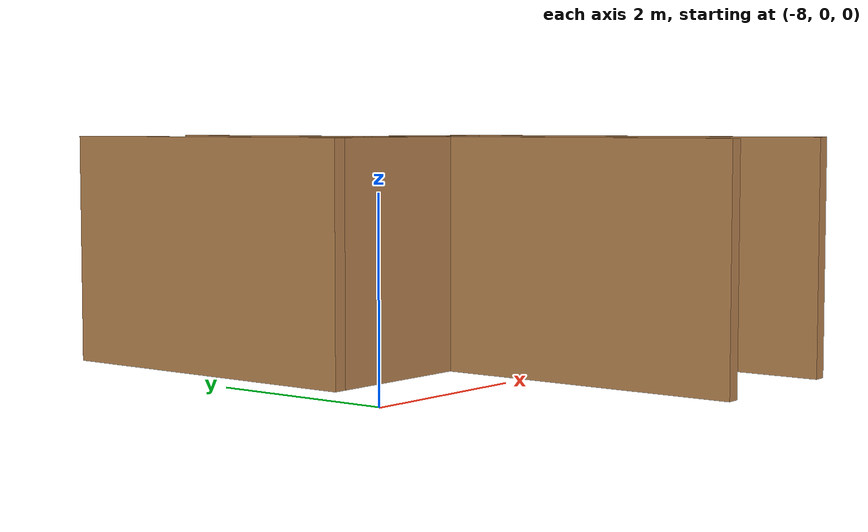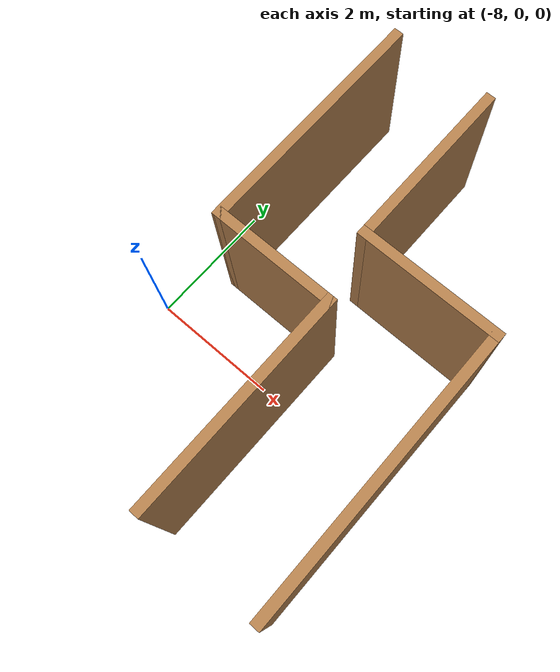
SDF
<?xml version='1.0'?>
<sdf version='1.6'>
  <model name='model_corridor_2'>
    <pose frame=''>-5.61543 1.1544 0 0 -0 0</pose>
    <link name='Wall_1'>
      <collision name='Wall_1_Collision'>
        <geometry>
          <box>
            <size>3.75 0.15 2.5</size>
          </box>
        </geometry>
        <pose frame=''>0 0 1.25 0 -0 0</pose>
      </collision>
      <visual name='Wall_1_Visual'>
        <pose frame=''>0 0 1.25 0 -0 0</pose>
        <geometry>
          <box>
            <size>3.75 0.15 2.5</size>
          </box>
        </geometry>
        <material>
          <script>
            <uri>file://media/materials/scripts/gazebo.material</uri>
            <name>Gazebo/Wood</name>
          </script>
          <ambient>1 1 1 1</ambient>
        </material>
        <meta>
          <layer>0</layer>
        </meta>
      </visual>
      <pose frame=''>-1.85 1.675 0 0 -0 -1.5708</pose>
    </link>
    <link name='Wall_2'>
      <collision name='Wall_2_Collision'>
        <geometry>
          <box>
            <size>2 0.15 2.5</size>
          </box>
        </geometry>
        <pose frame=''>0 0 1.25 0 -0 0</pose>
      </collision>
      <visual name='Wall_2_Visual'>
        <pose frame=''>0 0 1.25 0 -0 0</pose>
        <geometry>
          <box>
            <size>2 0.15 2.5</size>
          </box>
        </geometry>
        <material>
          <script>
            <uri>file://media/materials/scripts/gazebo.material</uri>
            <name>Gazebo/Wood</name>
          </script>
          <ambient>1 1 1 1</ambient>
        </material>
        <meta>
          <layer>0</layer>
        </meta>
      </visual>
      <pose frame=''>-0.925 -0.125 0 0 -0 0</pose>
    </link>
    <link name='Wall_3'>
      <collision name='Wall_3_Collision'>
        <geometry>
          <box>
            <size>3.5 0.15 2.5</size>
          </box>
        </geometry>
        <pose frame=''>0 0 1.25 0 -0 0</pose>
      </collision>
      <visual name='Wall_3_Visual'>
        <pose frame=''>0 0 1.25 0 -0 0</pose>
        <geometry>
          <box>
            <size>3.5 0.15 2.5</size>
          </box>
        </geometry>
        <material>
          <script>
            <uri>file://media/materials/scripts/gazebo.material</uri>
            <name>Gazebo/Wood</name>
          </script>
          <ambient>1 1 1 1</ambient>
        </material>
        <meta>
          <layer>0</layer>
        </meta>
      </visual>
      <pose frame=''>0 -1.8 0 0 -0 -1.5708</pose>
    </link>
    <link name='Wall_5'>
      <collision name='Wall_5_Collision'>
        <geometry>
          <box>
            <size>4.5 0.15 2.5</size>
          </box>
        </geometry>
        <pose frame=''>0 0 1.25 0 -0 0</pose>
      </collision>
      <visual name='Wall_5_Visual'>
        <pose frame=''>0 0 1.25 0 -0 0</pose>
        <geometry>
          <box>
            <size>4.5 0.15 2.5</size>
          </box>
        </geometry>
        <material>
          <script>
            <uri>file://media/materials/scripts/gazebo.material</uri>
            <name>Gazebo/Wood</name>
          </script>
          <ambient>1 1 1 1</ambient>
        </material>
        <meta>
          <layer>0</layer>
        </meta>
      </visual>
      <pose frame=''>1.85 -1.3 0 0 -0 1.5708</pose>
    </link>
    <link name='Wall_6'>
      <collision name='Wall_6_Collision'>
        <geometry>
          <box>
            <size>2.25 0.15 2.5</size>
          </box>
        </geometry>
        <pose frame=''>0 0 1.25 0 -0 0</pose>
      </collision>
      <visual name='Wall_6_Visual'>
        <pose frame=''>0 0 1.25 0 -0 0</pose>
        <geometry>
          <box>
            <size>2.25 0.15 2.5</size>
          </box>
        </geometry>
        <material>
          <script>
            <uri>file://media/materials/scripts/gazebo.material</uri>
            <name>Gazebo/Wood</name>
          </script>
          <ambient>1 1 1 1</ambient>
        </material>
        <meta>
          <layer>0</layer>
        </meta>
      </visual>
      <pose frame=''>0.8 0.875 0 0 -0 3.14159</pose>
    </link>
    <link name='Wall_7'>
      <collision name='Wall_7_Collision'>
        <geometry>
          <box>
            <size>2.75 0.15 2.5</size>
          </box>
        </geometry>
        <pose frame=''>0 0 1.25 0 -0 0</pose>
      </collision>
      <visual name='Wall_7_Visual'>
        <pose frame=''>0 0 1.25 0 -0 0</pose>
        <geometry>
          <box>
            <size>2.75 0.15 2.5</size>
          </box>
        </geometry>
        <material>
          <script>
            <uri>file://media/materials/scripts/gazebo.material</uri>
            <name>Gazebo/Wood</name>
          </script>
          <ambient>1 1 1 1</ambient>
        </material>
        <meta>
          <layer>0</layer>
        </meta>
      </visual>
      <pose frame=''>-0.25 2.175 0 0 -0 1.5708</pose>
    </link>
    <static>1</static>
  </model>
</sdf>
